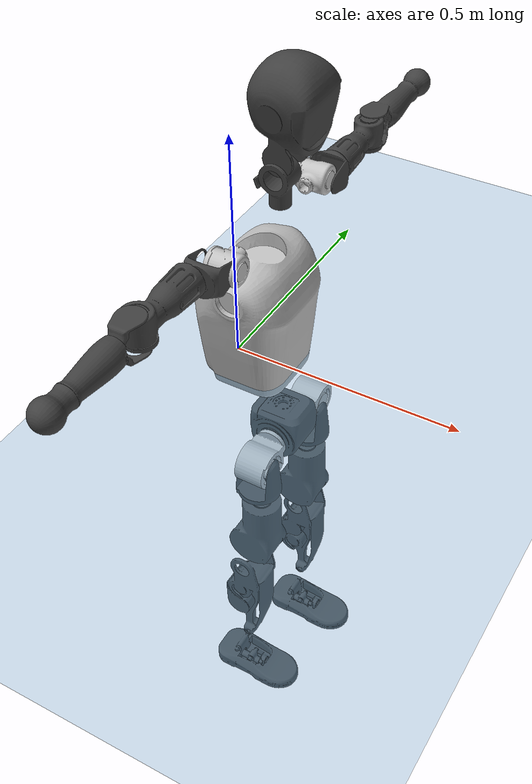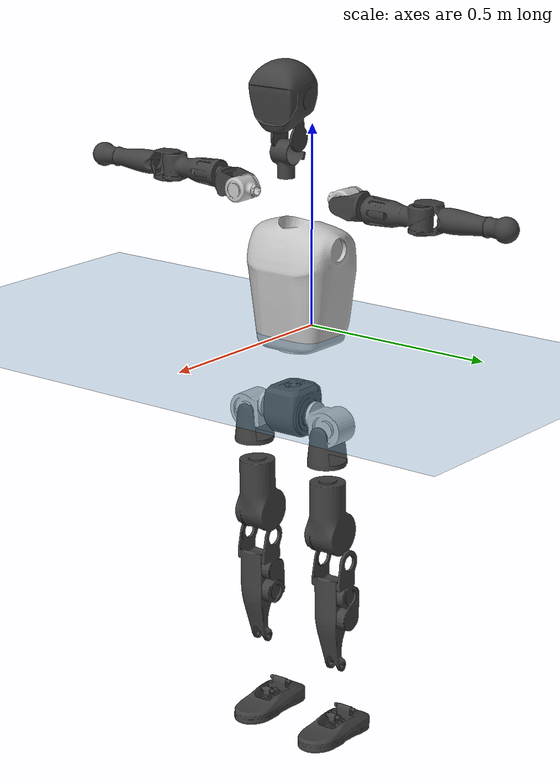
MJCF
<mujoco model="T1">
  <compiler angle="radian" assetdir="assets" balanceinertia="true" inertiafromgeom="false"/>

  <option timestep="0.005" density="1.2" viscosity="2e-05"/>

  <size nkey="1"/>

  <visual>
    <quality shadowsize="8192"/>
    <map shadowclip="0.5"/>
  </visual>

  <default>
    <default class="/">
      <joint armature="0.01" damping="0.01" frictionloss="0.1"/>
      <geom contype="0" conaffinity="0" group="1" solref="-1000 -80"/>
      <site size="0.01 0.005 0.005" group="5"/>
      <general forcelimited="true" biastype="affine" gainprm="25" biasprm="0 -25 -0.6"/>
      <default class="t1">
        <geom rgba="0.25 0.25 0.25 1"/>
        <default class="visual">
          <geom type="mesh" group="2"/>
        </default>
        <default class="collision">
          <geom group="3"/>
        </default>
        <default class="foot">
          <geom size="0.1115 0.05 0.015" type="box" condim="6" group="4" priority="1" solimp="0.015 1 0.015"/>
        </default>
        <default class="reward_collision_sphere">
          <geom group="5" rgba="1 0 0 1"/>
        </default>
      </default>
    </default>
  </default>

  <asset>
    <texture type="skybox" colorspace="auto" name="//unnamed_texture_0" builtin="gradient" rgb1="0.95 0.95 0.95" rgb2="0.95 0.95 0.95" width="100" height="600"/>
    <texture type="2d" colorspace="auto" name="texplane" builtin="checker" rgb1="0.345 0.575 0.748" rgb2="0.345 0.575 0.748" markrgb="1 1 1" width="512" height="512"/>
    <material name="MatPlane" class="/" texture="texplane" texuniform="true" texrepeat="2 2" specular="0.9"/>
    <mesh name="Trunk" class="/" file="Trunk.stl"/>
    <mesh name="H1" class="/" file="H1.stl"/>
    <mesh name="H2" class="/" file="H2.stl"/>
    <mesh name="AL1" class="/" file="AL1.stl"/>
    <mesh name="AL2" class="/" file="AL2.stl"/>
    <mesh name="AL3" class="/" file="AL3.stl"/>
    <mesh name="left_hand_link" class="/" file="left_hand_link.stl"/>
    <mesh name="AR1" class="/" file="AR1.stl"/>
    <mesh name="AR2" class="/" file="AR2.stl"/>
    <mesh name="AR3" class="/" file="AR3.stl"/>
    <mesh name="right_hand_link" class="/" file="right_hand_link.stl"/>
    <mesh name="Waist" class="/" file="Waist.stl"/>
    <mesh name="Hip_Pitch_Left" class="/" file="Hip_Pitch_Left.stl"/>
    <mesh name="Hip_Roll_Left" class="/" file="Hip_Roll_Left.stl"/>
    <mesh name="Hip_Yaw_Left" class="/" file="Hip_Yaw_Left.stl"/>
    <mesh name="Shank_Left" class="/" file="Shank_Left.stl"/>
    <mesh name="Ankle_Cross_Left" class="/" file="Ankle_Cross_Left.stl"/>
    <mesh name="left_foot_link" class="/" file="left_foot_link.stl"/>
    <mesh name="Hip_Pitch_Right" class="/" file="Hip_Pitch_Right.stl"/>
    <mesh name="Hip_Roll_Right" class="/" file="Hip_Roll_Right.stl"/>
    <mesh name="Hip_Yaw_Right" class="/" file="Hip_Yaw_Right.stl"/>
    <mesh name="Shank_Right" class="/" file="Shank_Right.stl"/>
    <mesh name="Ankle_Cross_Right" class="/" file="Ankle_Cross_Right.stl"/>
    <mesh name="right_foot_link" class="/" file="right_foot_link.stl"/>
  </asset>

  <worldbody>
    <geom name="floor" class="/" size="100 100 0.125" type="plane" group="0" material="MatPlane"/>
    <light name="toplight_shadow" class="/" pos="0 0 5" dir="0.0990148 0.0990148 -0.990148" type="directional" ambient="0.04 0.04 0.04" diffuse="0.55 0.55 0.55" specular="0.12 0.12 0.12"/>
    <light name="toplight_fill" class="/" pos="0 0 5" dir="0.0990148 0.0990148 -0.990148" type="directional" castshadow="false" ambient="0.04 0.04 0.04" diffuse="0.3 0.3 0.3" specular="0.08 0.08 0.08"/>
    <body name="trunk" childclass="t1" pos="-0.000166347 0.00592698 0.000359578" quat="0.99999 0.00370385 0.000228062 -0.00230088">
      <inertial pos="0.0827238 0.00405058 0.16132" quat="0.998937 0.0409504 -0.0171994 0.0123438" mass="31.5207" diaginertia="0.532532 0.130311 0.426845"/>
      <joint name="//unnamed_joint_0" type="free" armature="0" damping="0" frictionloss="0"/>
      <geom name="//unnamed_geom_1" class="visual" rgba="0.76 0.76 0.76 1" mesh="Trunk"/>
      <geom name="//unnamed_geom_2" class="collision" size="0.104392 0.139189 0.208784" pos="0.0908487 0 0.185454" type="box"/>
      <geom name="//unnamed_geom_3" class="reward_collision_sphere" size="0.160067" pos="0.0908487 0 0.154545"/>
      <geom name="//unnamed_geom_4" class="reward_collision_sphere" size="0.0208784" pos="0.0908487 0.0948664 0"/>
      <geom name="//unnamed_geom_5" class="reward_collision_sphere" size="0.0208784" pos="0.0908487 -0.0948664 0"/>
      <geom name="//unnamed_geom_6" class="reward_collision_sphere" size="0.0208784" pos="0.0908487 0.11942 0.278181"/>
      <geom name="//unnamed_geom_7" class="reward_collision_sphere" size="0.0208784" pos="0.0908487 -0.11942 0.278181"/>
      <site name="imu" pos="-0.0418936 0.000578403 0.0410918" size="0.0139189"/>
      <camera name="track" pos="0 -2.23215 0" quat="0.707107 0.707107 0 0" mode="trackcom"/>
      <camera name="ego_camera" pos="0.184726 0 0.64909" quat="-0.5 -0.5 0.5 0.5"/>
      <body name="H1" pos="0.104112 -0.000486556 0.387326" quat="1 0.000441554 0.000226923 -0.000500065">
        <inertial pos="-0.000381051 -0.00191233 0.0885523" quat="0.761889 -0.0105502 -0.00372836 0.647612" mass="1.17703" diaginertia="0.00206282 0.000367338 0.00131403"/>
        <joint name="AAHead_yaw" pos="0 0 0" axis="-0.00432141 0.00450332 0.999981" range="-1.73699 1.58638" armature="0.00576782" damping="0.00965817" frictionloss="0.0619283"/>
        <geom name="//unnamed_geom_8" class="visual" mesh="H1"/>
        <body name="H2" pos="0.00496157 0.0137963 0.0982372" quat="0.999997 0.000771161 0.00204862 -0.000500622">
          <inertial pos="0.00225587 0.0113521 0.165267" quat="0.981197 0.133155 -0.0753115 -0.117687" mass="1.60223" diaginertia="0.0162202 0.00389829 0.0155752"/>
          <joint name="Head_pitch" pos="0 0 0" axis="0.0187078 -0.999823 0.00183071" range="-1.23539 0.401847" armature="0.00882015" damping="0.0638677" frictionloss="0.134312"/>
          <geom name="//unnamed_geom_9" class="visual" mesh="H2"/>
          <geom name="//unnamed_geom_10" class="collision" size="0.111351" pos="0.0151414 0 0.17"/>
          <geom name="//unnamed_geom_11" class="reward_collision_sphere" size="0.12527" pos="0.0302829 0 0.154545"/>
        </body>
      </body>
      <body name="AL1" pos="0.0853525 0.119404 0.350124" quat="0.999983 -0.00298227 -0.00427988 0.00257">
        <inertial pos="0.00638126 0.0499148 -8.04545e-05" quat="0.505874 0.495707 -0.504415 0.493894" mass="1.54825" diaginertia="0.011672 0.00278351 0.00313434"/>
        <joint name="Left_Shoulder_Pitch" pos="0 0 0" axis="0.0175839 0.999088 0.0389068" range="-3.17694 0.975011" armature="0.0132518" damping="0.064914" frictionloss="0.0963756"/>
        <geom name="//unnamed_geom_12" class="visual" rgba="0.76 0.76 0.76 1" mesh="AL1"/>
        <body name="AL2" pos="0.011056 0.0483399 -0.0039329" quat="1 -2.04431e-05 5.66317e-06 -2.45398e-05">
          <inertial pos="0.0108132 0.0308056 0.00569936" quat="0.484506 0.510054 -0.491757 0.513102" mass="0.393372" diaginertia="0.00294531 0.000531772 0.00153188"/>
          <joint name="Left_Shoulder_Roll" pos="0 0 0" axis="-0.999986 -0.00254635 0.00468671" stiffness="0.0682451" range="-1.68672 1.74441" armature="0.00550589" damping="0.0145086" frictionloss="0.143883"/>
          <geom name="//unnamed_geom_13" class="visual" mesh="AL2"/>
          <body name="AL3" pos="-0.00365124 0.0673734 -0.00637858" quat="0.999999 -0.000990851 0.000469338 -0.000174319">
            <inertial pos="-0.0106625 0.106917 -0.00463784" quat="0.714207 0.699271 0.0169732 -0.0252943" mass="3.50238" diaginertia="0.0999574 0.0249367 0.0067812"/>
            <joint name="Left_Elbow_Pitch" pos="0 0 0" axis="0.0244092 -0.999612 -0.0134093" stiffness="0.02351" range="-2.02039 2.362" armature="0.00460651" damping="0.0240884" frictionloss="0.131738"/>
            <geom name="//unnamed_geom_14" class="visual" mesh="AL3"/>
            <geom name="//unnamed_geom_15" class="collision" size="0.0417567 0.104392" pos="0 0.0558038 0" quat="0.707105 0.707108 0 0" type="cylinder"/>
            <geom name="//unnamed_geom_16" class="reward_collision_sphere" size="0.0501081"/>
            <body name="left_hand_link" pos="0.00241227 0.16274 0.00758299" quat="0.999981 0.00566483 -0.00221685 -0.000280227">
              <inertial pos="0.012428 0.117464 -0.000871366" quat="0.703256 0.710857 0.00938528 -0.00496677" mass="0.856883" diaginertia="0.0728627 0.0130911 0.00161845"/>
              <joint name="Left_Elbow_Yaw" pos="0 0 0" axis="0.000194573 -0.000951857 1" range="-2.44438 0.254236" armature="0.0145091" damping="0" frictionloss="0.147879"/>
              <geom name="//unnamed_geom_17" class="visual" mesh="left_hand_link"/>
              <geom name="//unnamed_geom_18" class="collision" size="0.0417567 0.12179" pos="0 0.14509 0" quat="0.707105 0.707108 0 0" type="cylinder"/>
              <geom name="//unnamed_geom_19" class="reward_collision_sphere" size="0.0695945"/>
              <geom name="//unnamed_geom_20" class="reward_collision_sphere" size="0.0487162" pos="0 0.122768 0"/>
              <geom name="//unnamed_geom_21" class="reward_collision_sphere" size="0.0487162" pos="0 0.239956 0"/>
            </body>
          </body>
        </body>
      </body>
      <body name="AR1" pos="0.0827584 -0.107485 0.337548" quat="0.999997 -0.0014987 0.00159742 -0.00121948">
        <inertial pos="0.00633195 -0.0366371 0.00246997" quat="0.518585 0.467478 -0.519748 0.492337" mass="1.54123" diaginertia="0.0131225 0.00250585 0.00273987"/>
        <joint name="Right_Shoulder_Pitch" pos="0 0 0" axis="-0.0465764 -0.998672 0.022028" stiffness="0.0667228" range="-1.20776 3.43317" armature="0.00670243" damping="0.0304134" frictionloss="0.177848"/>
        <geom name="//unnamed_geom_22" class="visual" rgba="0.76 0.76 0.76 1" mesh="AR1"/>
        <body name="AR2" pos="-0.0126703 -0.0600417 0.00676827" quat="0.999984 -0.00257094 -0.00494348 -0.000425508">
          <inertial pos="0.0133375 -0.0412255 0.00420346" quat="0.524913 0.500037 -0.49601 0.477915" mass="0.49004" diaginertia="0.00318312 0.000512101 0.0015933"/>
          <joint name="Right_Shoulder_Roll" pos="0 0 0" axis="-0.999963 -0.00331 0.00792394" range="-1.8235 1.49562" armature="0.0151608" damping="0" frictionloss="0.044568"/>
          <geom name="//unnamed_geom_23" class="visual" mesh="AR2"/>
          <body name="AR3" pos="-0.00692203 -0.0716201 0.013864" quat="1 -0.000297474 -6.90512e-05 -5.83806e-05">
            <inertial pos="0.000812593 -0.0839995 0.00490464" quat="0.679603 0.732724 -0.0250364 0.0250754" mass="2.79377" diaginertia="0.104447 0.0232245 0.00483669"/>
            <joint name="Right_Elbow_Pitch" pos="0 0 0" axis="-0.0524629 0.998571 -0.010181" range="-2.05594 2.40667" armature="0.0223036" damping="0.00723319" frictionloss="0.0863156"/>
            <geom name="//unnamed_geom_24" class="visual" mesh="AR3"/>
            <geom name="//unnamed_geom_25" class="collision" size="0.0417567 0.104392" pos="0 -0.0558038 0" quat="0.707105 0.707108 0 0" type="cylinder"/>
            <geom name="//unnamed_geom_26" class="reward_collision_sphere" size="0.0501081"/>
            <body name="right_hand_link" pos="0.000807042 -0.163929 -0.0013472" quat="0.999988 0.00189062 -0.00406464 0.00184558">
              <inertial pos="0.000477192 -0.116791 -0.0104849" quat="0.705883 0.708329 0.000451368 -0.000220397" mass="0.960261" diaginertia="0.0697014 0.01514 0.00202117"/>
              <joint name="Right_Elbow_Yaw" pos="0 0 0" axis="0.0217238 0.0289704 0.999344" range="-0.00901983 2.28593" armature="0.00601387" damping="0.0759902" frictionloss="0.079304"/>
              <geom name="//unnamed_geom_27" class="visual" mesh="right_hand_link"/>
              <geom name="//unnamed_geom_28" class="collision" size="0.0417567 0.12179" pos="0 -0.14509 0" quat="0.707105 0.707108 0 0" type="cylinder"/>
              <geom name="//unnamed_geom_29" class="reward_collision_sphere" size="0.0695945"/>
              <geom name="//unnamed_geom_30" class="reward_collision_sphere" size="0.0487162" pos="0 -0.122768 0"/>
              <geom name="//unnamed_geom_31" class="reward_collision_sphere" size="0.0487162" pos="0 -0.239956 0"/>
            </body>
          </body>
        </body>
      </body>
      <body name="Waist" pos="0.0979694 0.00993418 -0.1911" quat="1 -0.000224992 -6.68036e-05 -0.000395918">
        <inertial pos="0.0145283 0.00193138 0.0101006" quat="0.981206 0.0406677 -0.184894 0.0373592" mass="8.10708" diaginertia="0.0493325 0.0106909 0.0479483"/>
        <joint name="Waist" pos="0 0 0" axis="0.0209256 -0.0497529 0.998542" stiffness="0.032675" range="-1.60381 1.79149" armature="0.0147797" damping="0" frictionloss="0.0665019"/>
        <geom name="//unnamed_geom_32" class="visual" mesh="Waist"/>
        <body name="Hip_Pitch_Left" pos="0.000792976 0.120633 0.00177445" quat="0.999996 -0.0022815 0.00183954 5.72216e-05">
          <inertial pos="0.00128434 -0.00267996 -0.0282846" quat="0.975731 0.218548 0.0109365 -0.0080701" mass="2.57623" diaginertia="0.0142974 0.0021714 0.010383"/>
          <joint name="Left_Hip_Pitch" pos="0 0 0" axis="0.0671736 0.997601 -0.0167231" stiffness="0.0617674" range="-1.77097 1.32386" armature="0.00989672" damping="0.0566336" frictionloss="0.131833"/>
          <geom name="//unnamed_geom_33" class="visual" rgba="0.76 0.76 0.76 1" mesh="Hip_Pitch_Left"/>
          <body name="Hip_Roll_Left" pos="0.00338642 -0.0139279 -0.0410655" quat="0.999977 0.0047871 -0.00415267 0.00225099">
            <inertial pos="0.0112162 0.00140248 -0.0845557" quat="0.70319 -0.0224366 -0.00951988 0.710585" mass="1.23347" diaginertia="0.0138431 0.00307585 0.00523517"/>
            <joint name="Left_Hip_Roll" pos="0 0 0" axis="-0.998131 -0.0597127 0.0130255" range="-1.66576 0.170532" armature="0.017881" damping="0.00719097" frictionloss="0.150741"/>
            <geom name="//unnamed_geom_34" class="visual" mesh="Hip_Roll_Left"/>
            <geom name="//unnamed_geom_35" class="reward_collision_sphere" size="0.076554"/>
            <body name="Hip_Yaw_Left" pos="-0.0045464 -0.000935236 -0.121662" quat="1 -6.92064e-05 9.59621e-05 -0.000224743">
              <inertial pos="-0.0106845 -0.00271712 -0.137993" quat="0.695627 0.0213103 -0.056115 0.715891" mass="7.07288" diaginertia="0.205578 0.050583 0.0259666"/>
              <joint name="Left_Hip_Yaw" pos="0 0 0" axis="0.00191143 0.00350025 -0.999992" range="-0.829671 1.04547" armature="0.014241" damping="0" frictionloss="0.139063"/>
              <geom name="//unnamed_geom_36" class="visual" mesh="Hip_Yaw_Left"/>
              <geom name="//unnamed_geom_37" class="collision" size="0.0695945 0.111351" type="cylinder"/>
              <body name="Shank_Left" pos="-0.0173222 0.0111496 -0.205541" quat="1 0.00076282 0.000515972 5.08933e-05">
                <inertial pos="-0.0046646 0.0093467 -0.192367" quat="0.995725 0.0167263 0.0161297 0.089394" mass="3.91347" diaginertia="0.253117 0.0537679 0.0170951"/>
                <joint name="Left_Knee_Pitch" pos="0 0 0" axis="-0.0180833 0.999811 0.00708452" range="-0.0854807 2.45763" armature="0.00673071" damping="0.0510842" frictionloss="0.156035"/>
                <geom name="//unnamed_geom_38" class="visual" mesh="Shank_Left"/>
                <geom name="//unnamed_geom_39" class="collision" size="0.0695945 0.104392" pos="0 0 -0.185454" type="cylinder"/>
                <geom name="//unnamed_geom_40" class="reward_collision_sphere" size="0.0904729"/>
                <body name="Ankle_Cross_Left" pos="0.000927891 -0.00841923 -0.422829" quat="0.999985 0.00138405 -0.00331503 -0.00425011">
                  <inertial pos="-9.65402e-05 0.0128579 -0.0116007" quat="0.411646 0.537931 0.573651 0.460546" mass="0.195969" diaginertia="0.000224242 3.82425e-05 8.86534e-05"/>
                  <joint name="Left_Ankle_Pitch" pos="0 0 0" axis="-0.0344428 0.999295 -0.0149353" stiffness="0.011764" range="-0.907236 0.280962" armature="0.0163933" damping="0.00362648" frictionloss="0.139296"/>
                  <geom name="//unnamed_geom_41" class="visual" mesh="Ankle_Cross_Left"/>
                  <body name="left_foot_link" pos="0.010012 0.0125697 -0.0148893" quat="1 0.000143374 -0.00086352 -0.000373079">
                    <inertial pos="-0.0110566 -0.000538941 -0.0273865" quat="0.00911532 0.625661 -0.0057724 0.78002" mass="1.90359" diaginertia="0.0226606 0.00418163 0.020939"/>
                    <joint name="Left_Ankle_Roll" pos="0 0 0" axis="-0.999961 -0.000993811 0.00872503" range="-0.473556 0.448054" armature="0.0220411" damping="0.042852" frictionloss="0.129552"/>
                    <geom name="//unnamed_geom_42" class="visual" mesh="left_foot_link"/>
                    <geom name="left_foot" class="foot" size="0.123131 0.0933102 0.0187809" pos="0.0151414 0 -0.0231818"/>
                    <geom name="//unnamed_geom_44" class="reward_collision_sphere" size="0.0723783" pos="0.0151414 0 -0.0231818"/>
                    <geom name="//unnamed_geom_45" class="reward_collision_sphere" size="0.0417567" pos="0.143844 -0.0256697 -0.0231818"/>
                    <geom name="//unnamed_geom_46" class="reward_collision_sphere" size="0.0417567" pos="-0.10599 -0.0256697 -0.0231818"/>
                    <site name="left_foot" class="foot" pos="0.0151414 0 -0.0231818" size="0.0139189"/>
                  </body>
                </body>
              </body>
            </body>
          </body>
        </body>
        <body name="Hip_Pitch_Right" pos="0.0093302 -0.121027 0.00763259" quat="0.999978 -0.00108744 0.0063772 0.00136209">
          <inertial pos="0.00221671 0.0223733 -0.0285832" quat="0.976001 -0.21657 -0.00404191 0.0224162" mass="2.87163" diaginertia="0.0165227 0.00292909 0.0132238"/>
          <joint name="Right_Hip_Pitch" pos="0 0 0" axis="0.00279127 -0.999996 0.00053357" stiffness="0.0187383" range="-1.39772 1.8214" armature="0.0178438" damping="0.0169336" frictionloss="0.0525423"/>
          <geom name="//unnamed_geom_47" class="visual" rgba="0.76 0.76 0.76 1" mesh="Hip_Pitch_Right"/>
          <body name="Hip_Roll_Right" pos="-0.00139043 0.00439026 -0.0264642" quat="1 5.30671e-05 -0.000780617 -0.000207267">
            <inertial pos="0.0130429 -0.0132442 -0.0703973" quat="0.69176 -0.0130564 0.00665356 0.721978" mass="0.981038" diaginertia="0.0128428 0.00256503 0.00444565"/>
            <joint name="Right_Hip_Roll" pos="0 0 0" axis="-0.999997 -0.00261301 -0.000177109" range="-0.193395 1.55921" armature="0.0101808" damping="0.00405527" frictionloss="0.135212"/>
            <geom name="//unnamed_geom_48" class="visual" mesh="Hip_Roll_Right"/>
            <geom name="//unnamed_geom_49" class="reward_collision_sphere" size="0.076554"/>
            <body name="Hip_Yaw_Right" pos="-0.000342191 0.00764528 -0.125329" quat="0.999997 0.000540005 0.000336138 0.00254641">
              <inertial pos="-0.0182493 0.00750941 -0.140142" quat="0.715088 -0.03127 -0.0338842 0.697512" mass="6.03031" diaginertia="0.185791 0.0441257 0.0220499"/>
              <joint name="Right_Hip_Yaw" pos="0 0 0" axis="0.0046889 0.0025835 -0.999986" range="-0.975381 1.20222" armature="0.0234315" damping="0" frictionloss="0.0573813"/>
              <geom name="//unnamed_geom_50" class="visual" mesh="Hip_Yaw_Right"/>
              <geom name="//unnamed_geom_51" class="collision" size="0.0695945 0.111351" type="cylinder"/>
              <body name="Shank_Right" pos="-0.0253682 -0.0120253 -0.208639" quat="0.999984 -0.00365842 0.00405238 -0.00119807">
                <inertial pos="-0.0080981 -0.00937236 -0.202038" quat="0.997417 0.013028 -0.013132 -0.0694075" mass="5.38326" diaginertia="0.303517 0.0601713 0.0143227"/>
                <joint name="Right_Knee_Pitch" pos="0 0 0" axis="0.0387295 -0.998603 0.0359518" stiffness="0.00300304" range="-2.54418 0.196498" armature="0.0148658" damping="0" frictionloss="0.169198"/>
                <geom name="//unnamed_geom_52" class="visual" mesh="Shank_Right"/>
                <geom name="//unnamed_geom_53" class="collision" size="0.0695945 0.104392" pos="0 0 -0.185454" type="cylinder"/>
                <geom name="//unnamed_geom_54" class="reward_collision_sphere" size="0.0904729"/>
                <body name="Ankle_Cross_Right" pos="-0.00626794 0.0102509 -0.435689" quat="0.999976 0.00541937 -0.00279682 -0.00338543">
                  <inertial pos="-0.00140931 0.00399578 -0.0214716" quat="0.415316 0.564691 0.555707 0.447019" mass="0.198237" diaginertia="0.000222533 4.45123e-05 0.000112311"/>
                  <joint name="Right_Ankle_Pitch" pos="0 0 0" axis="-0.00156193 -0.999792 0.0203513" stiffness="0.00542112" range="-0.14688 0.86859" armature="0.0142126" damping="0" frictionloss="0.145116"/>
                  <geom name="//unnamed_geom_55" class="visual" mesh="Ankle_Cross_Right"/>
                  <body name="right_foot_link" pos="0.00337754 0.0107653 -0.0128489" quat="1 0.000272453 -0.000599733 0.000722103">
                    <inertial pos="-0.00100201 -0.00387375 -0.0041871" quat="0.00308678 0.619419 -0.0119543 0.784964" mass="1.94119" diaginertia="0.0215887 0.00409284 0.021303"/>
                    <joint name="Right_Ankle_Roll" pos="0 0 0" axis="-0.999142 0.0403356 0.00939227" stiffness="0.0369516" range="-0.718377 0.450766" armature="0.00639929" damping="0.0124836" frictionloss="0.197169"/>
                    <geom name="//unnamed_geom_56" class="visual" mesh="right_foot_link"/>
                    <geom name="right_foot" class="foot" size="0.145824 0.0919733 0.0191823" pos="0.0151414 0 -0.0231818"/>
                    <geom name="//unnamed_geom_58" class="reward_collision_sphere" size="0.0556756"/>
                    <geom name="//unnamed_geom_59" class="reward_collision_sphere" size="0.0417567" pos="0.0151414 0 -0.0231818"/>
                    <geom name="//unnamed_geom_60" class="reward_collision_sphere" size="0.0417567" pos="0.143844 0.0256697 -0.0231818"/>
                    <geom name="//unnamed_geom_61" class="reward_collision_sphere" size="0.0417567" pos="-0.10599 0.0256697 -0.0231818"/>
                    <site name="right_foot" class="foot" pos="0.0151414 0 -0.0231818" size="0.0139189"/>
                  </body>
                </body>
              </body>
            </body>
          </body>
        </body>
      </body>
    </body>
  </worldbody>

  <contact>
    <pair class="/" geom1="floor" geom2="left_foot" name="//unnamed_contact_0"/>
    <pair class="/" geom1="floor" geom2="right_foot" name="//unnamed_contact_1"/>
  </contact>

  <actuator>
    <general name="AAHead_yaw" class="/" joint="AAHead_yaw" forcerange="-12.262 12.262" gainprm="39.6078" biasprm="0 -39.6078 -0.903002"/>
    <general name="Head_pitch" class="/" joint="Head_pitch" forcerange="-6.80196 6.80196" gainprm="39.6078" biasprm="0 -39.6078 -0.903002"/>
    <general name="Left_Shoulder_Pitch" class="/" joint="Left_Shoulder_Pitch" forcerange="-25.8905 25.8905" gainprm="39.6078" biasprm="0 -39.6078 -0.903002"/>
    <general name="Left_Shoulder_Roll" class="/" joint="Left_Shoulder_Roll" forcerange="-15.15 15.15" gainprm="39.6078" biasprm="0 -39.6078 -0.903002"/>
    <general name="Left_Elbow_Pitch" class="/" joint="Left_Elbow_Pitch" forcerange="-25.5274 25.5274" gainprm="39.6078" biasprm="0 -39.6078 -0.903002"/>
    <general name="Left_Elbow_Yaw" class="/" joint="Left_Elbow_Yaw" forcerange="-27.3632 27.3632" gainprm="39.6078" biasprm="0 -39.6078 -0.903002"/>
    <general name="Right_Shoulder_Pitch" class="/" joint="Right_Shoulder_Pitch" forcerange="-25.7276 25.7276" gainprm="39.6078" biasprm="0 -39.6078 -0.903002"/>
    <general name="Right_Shoulder_Roll" class="/" joint="Right_Shoulder_Roll" forcerange="-28.8968 28.8968" gainprm="39.6078" biasprm="0 -39.6078 -0.903002"/>
    <general name="Right_Elbow_Pitch" class="/" joint="Right_Elbow_Pitch" forcerange="-23.3771 23.3771" gainprm="39.6078" biasprm="0 -39.6078 -0.903002"/>
    <general name="Right_Elbow_Yaw" class="/" joint="Right_Elbow_Yaw" forcerange="-26.9393 26.9393" gainprm="39.6078" biasprm="0 -39.6078 -0.903002"/>
    <general name="Waist" class="/" joint="Waist" forcerange="-58.41 58.41" gainprm="39.6078" biasprm="0 -39.6078 -0.903002"/>
    <general name="Left_Hip_Pitch" class="/" joint="Left_Hip_Pitch" forcerange="-71.1417 71.1417" gainprm="39.6078" biasprm="0 -39.6078 -0.903002"/>
    <general name="Left_Hip_Roll" class="/" joint="Left_Hip_Roll" forcerange="-39.9109 39.9109" gainprm="39.6078" biasprm="0 -39.6078 -0.903002"/>
    <general name="Left_Hip_Yaw" class="/" joint="Left_Hip_Yaw" forcerange="-44.6431 44.6431" gainprm="39.6078" biasprm="0 -39.6078 -0.903002"/>
    <general name="Left_Knee_Pitch" class="/" joint="Left_Knee_Pitch" forcerange="-114.071 114.071" gainprm="39.6078" biasprm="0 -39.6078 -0.903002"/>
    <general name="Left_Ankle_Pitch" class="/" joint="Left_Ankle_Pitch" forcerange="-14.2141 14.2141" gainprm="39.6078" biasprm="0 -39.6078 -0.903002"/>
    <general name="Left_Ankle_Roll" class="/" joint="Left_Ankle_Roll" forcerange="-31.7054 31.7054" gainprm="39.6078" biasprm="0 -39.6078 -0.903002"/>
    <general name="Right_Hip_Pitch" class="/" joint="Right_Hip_Pitch" forcerange="-65.9572 65.9572" gainprm="39.6078" biasprm="0 -39.6078 -0.903002"/>
    <general name="Right_Hip_Roll" class="/" joint="Right_Hip_Roll" forcerange="-57.1589 57.1589" gainprm="39.6078" biasprm="0 -39.6078 -0.903002"/>
    <general name="Right_Hip_Yaw" class="/" joint="Right_Hip_Yaw" forcerange="-23.3692 23.3692" gainprm="39.6078" biasprm="0 -39.6078 -0.903002"/>
    <general name="Right_Knee_Pitch" class="/" joint="Right_Knee_Pitch" forcerange="-74.6744 74.6744" gainprm="39.6078" biasprm="0 -39.6078 -0.903002"/>
    <general name="Right_Ankle_Pitch" class="/" joint="Right_Ankle_Pitch" forcerange="-26.511 26.511" gainprm="39.6078" biasprm="0 -39.6078 -0.903002"/>
    <general name="Right_Ankle_Roll" class="/" joint="Right_Ankle_Roll" forcerange="-19.7243 19.7243" gainprm="39.6078" biasprm="0 -39.6078 -0.903002"/>
  </actuator>

  <sensor>
    <gyro site="imu" name="imu_angular_velocity"/>
    <velocimeter site="imu" name="imu_linear_velocity"/>
    <framelinvel objtype="site" objname="left_foot" name="left_foot_global_linear_velocity"/>
    <framelinvel objtype="site" objname="right_foot" name="right_foot_global_linear_velocity"/>
  </sensor>

  <keyframe>
    <key name="home" qpos="0 0 0.6385 1 0 0 0 0 0 0 1.4 0 -0.4 0 -1.4 0 0.4 0 -0.4 0 0 0.8 -0.4 0 0.4 0 0 -0.8 0.4 0"/>
  </keyframe>
</mujoco>
